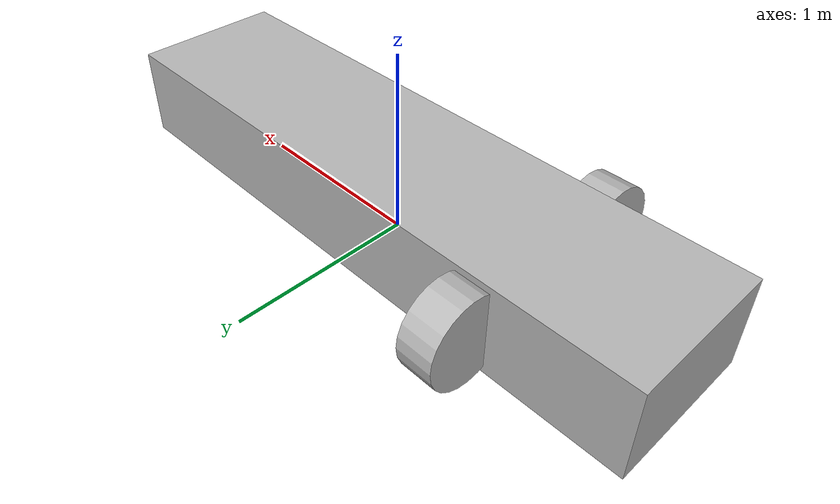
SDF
<?xml version="1.0" ?>
<sdf version="1.7">
  <model name="golf_cart">

    <!-- ================= BASE ================= -->
    <link name="base_link">
      <pose>0 0 0.25 0 0 0</pose>

      <inertial>
        <mass>300</mass>
        <inertia>
          <ixx>20</ixx> <iyy>40</iyy> <izz>50</izz>
          <ixy>0</ixy> <ixz>0</ixz> <iyz>0</iyz>
        </inertia>
      </inertial>

      <visual name="base_visual">
        <geometry>
          <box>
            <size>3.33 0.82 0.5</size>
          </box>
        </geometry>
      </visual>

      <collision name="base_collision">
        <geometry>
          <box>
            <size>3.33 0.82 0.5</size>
          </box>
        </geometry>
      </collision>
    </link>

    <!-- ================= FRONT LEFT STEERING ================= -->
    <link name="front_left_steer">
      <pose>1.44 0.5025 0.25 0 0 0</pose>
    </link>

    <joint name="front_left_steer_joint" type="revolute">
      <parent>base_link</parent>
      <child>front_left_steer</child>
      <axis>
        <xyz>0 0 1</xyz>
        <limit>
          <lower>-0.6</lower>
          <upper>0.6</upper>
          <effort>100</effort>
          <velocity>1.0</velocity>
        </limit>
      </axis>
    </joint>

    <link name="front_left_wheel">
      <pose>0 0 0 0 1.5708 0</pose>

      <inertial>
        <mass>10</mass>
        <inertia>
          <ixx>0.15</ixx> <iyy>0.15</iyy> <izz>0.1</izz>
          <ixy>0</ixy> <ixz>0</ixz> <iyz>0</iyz>
        </inertia>
      </inertial>

      <visual name="fl_visual">
        <geometry>
          <cylinder>
            <radius>0.2355</radius>
            <length>0.193</length>
          </cylinder>
        </geometry>
      </visual>

      <collision name="fl_collision">
        <geometry>
          <cylinder>
            <radius>0.2355</radius>
            <length>0.193</length>
          </cylinder>
        </geometry>
      </collision>
    </link>

    <joint name="front_left_wheel_joint" type="revolute">
      <parent>front_left_steer</parent>
      <child>front_left_wheel</child>
      <axis>
        <xyz>0 1 0</xyz>
        <limit>
          <lower>-1e16</lower>
          <upper>1e16</upper>
          <effort>200</effort>
          <velocity>100</velocity>
        </limit>
      </axis>
    </joint>

    <!-- ================= FRONT RIGHT STEERING ================= -->
    <link name="front_right_steer">
      <pose>1.44 -0.5025 0.25 0 0 0</pose>
    </link>

    <joint name="front_right_steer_joint" type="revolute">
      <parent>base_link</parent>
      <child>front_right_steer</child>
      <axis>
        <xyz>0 0 1</xyz>
        <limit>
          <lower>-0.6</lower>
          <upper>0.6</upper>
          <effort>100</effort>
          <velocity>1.0</velocity>
        </limit>
      </axis>
    </joint>

    <link name="front_right_wheel">
      <pose>0 0 0 0 1.5708 0</pose>

      <inertial>
        <mass>10</mass>
        <inertia>
          <ixx>0.15</ixx> <iyy>0.15</iyy> <izz>0.1</izz>
          <ixy>0</ixy> <ixz>0</ixz> <iyz>0</iyz>
        </inertia>
      </inertial>

      <visual name="fr_visual">
        <geometry>
          <cylinder>
            <radius>0.2355</radius>
            <length>0.193</length>
          </cylinder>
        </geometry>
      </visual>

      <collision name="fr_collision">
        <geometry>
          <cylinder>
            <radius>0.2355</radius>
            <length>0.193</length>
          </cylinder>
        </geometry>
      </collision>
    </link>

    <joint name="front_right_wheel_joint" type="revolute">
      <parent>front_right_steer</parent>
      <child>front_right_wheel</child>
      <axis>
        <xyz>0 1 0</xyz>
        <limit>
          <lower>-1e16</lower>
          <upper>1e16</upper>
          <effort>200</effort>
          <velocity>100</velocity>
        </limit>
      </axis>
    </joint>

    <!-- ================= REAR LEFT WHEEL ================= -->
    <link name="rear_left_wheel">
      <pose>-0.86 0.5025 0.25 0 1.5708 0</pose>

      <inertial>
        <mass>10</mass>
        <inertia>
          <ixx>0.15</ixx> <iyy>0.15</iyy> <izz>0.1</izz>
        </inertia>
      </inertial>

      <visual name="rl_visual">
        <geometry>
          <cylinder>
            <radius>0.2355</radius>
            <length>0.193</length>
          </cylinder>
        </geometry>
      </visual>

      <collision name="rl_collision">
        <geometry>
          <cylinder>
            <radius>0.2355</radius>
            <length>0.193</length>
          </cylinder>
        </geometry>
      </collision>
    </link>

    <joint name="rear_left_wheel_joint" type="revolute">
      <parent>base_link</parent>
      <child>rear_left_wheel</child>
      <axis>
        <xyz>0 1 0</xyz>
        <limit>
          <lower>-1e16</lower>
          <upper>1e16</upper>
          <effort>300</effort>
          <velocity>100</velocity>
        </limit>
      </axis>
    </joint>

    <!-- ================= REAR RIGHT WHEEL ================= -->
    <link name="rear_right_wheel">
      <pose>-0.86 -0.5025 0.25 0 1.5708 0</pose>

      <inertial>
        <mass>10</mass>
        <inertia>
          <ixx>0.15</ixx> <iyy>0.15</iyy> <izz>0.1</izz>
        </inertia>
      </inertial>

      <visual name="rr_visual">
        <geometry>
          <cylinder>
            <radius>0.2355</radius>
            <length>0.193</length>
          </cylinder>
        </geometry>
      </visual>

      <collision name="rr_collision">
        <geometry>
          <cylinder>
            <radius>0.2355</radius>
            <length>0.193</length>
          </cylinder>
        </geometry>
      </collision>
    </link>

    <joint name="rear_right_wheel_joint" type="revolute">
      <parent>base_link</parent>
      <child>rear_right_wheel</child>
      <axis>
        <xyz>0 1 0</xyz>
        <limit>
          <lower>-1e16</lower>
          <upper>1e16</upper>
          <effort>300</effort>
          <velocity>100</velocity>
        </limit>
      </axis>
    </joint>

    <static>false</static>
  </model>
</sdf>
